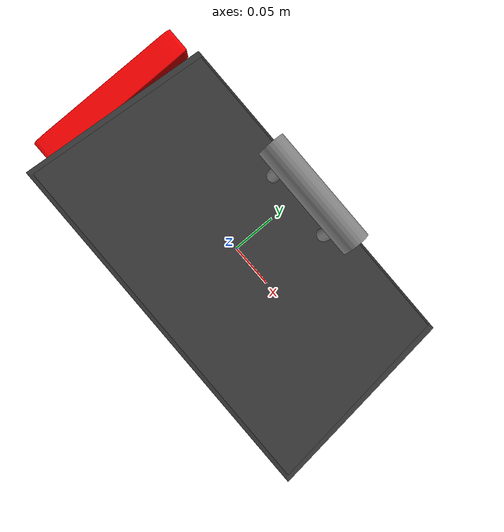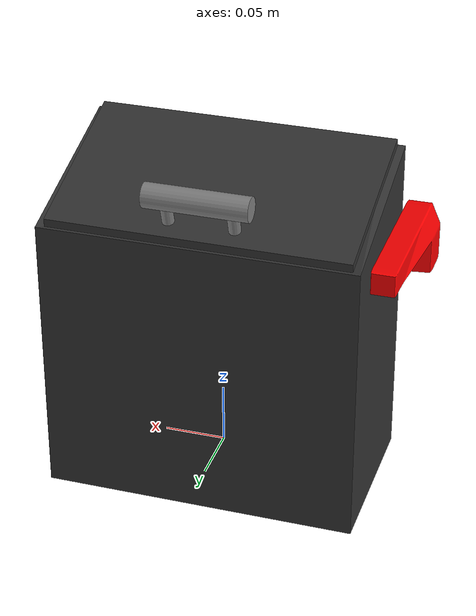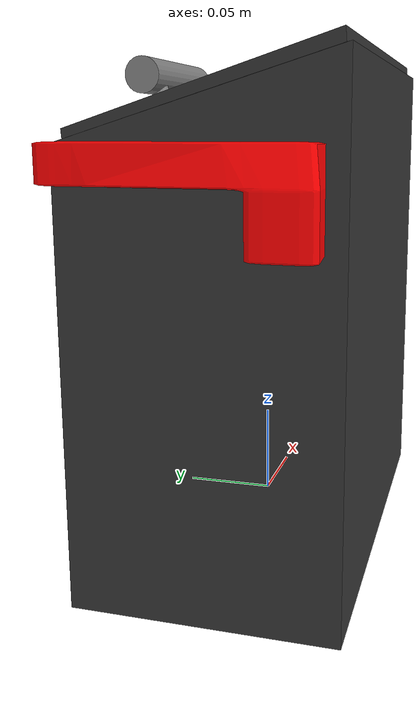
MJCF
<mujoco model="mailbox">
    <compiler angle="radian" autolimits="true" />
    <option impratio="10" />
    <default>
        <default class="visual">
            <geom contype="0" conaffinity="0" group="2" />
        </default>
        <default class="collision">
            <geom group="3" condim="1" friction="0" />
        </default>
        <default class="graspable_collision">
            <geom group="3" priority="2" condim="6" friction="0.99 0.99 0.99" />
        </default>
    </default>
    <asset>
        <mesh file="lid.obj" name="lid" />
        <mesh file="flag.obj" name="flag" scale="2 1 1" />
        <mesh file="main_box.obj" name="main_box" />
        <mesh file="handle.obj" name="handle" />
        <material name="red" specular="0.5" shininess="0.25" rgba="1 0 0 1" />
        <material name="black" specular="0.0" shininess="0.0" rgba="0.2 0.2 0.2 1" />
        <material name="grey" specular="0.0" shininess="0.0" rgba="0.5 0.5 0.5 1" />
    </asset>

    <worldbody>
        <body name="mailbox" euler="0 0 3.14">
            <geom type="mesh" mesh="main_box" material="black" class="visual" />
            <geom type="box" size="0.13 0.07 0.008"
                pos="0 0 -0.008"
                class="collision" />
            <geom type="box" size="0.13 0.008 0.13"
                pos="0 0.07 0.12"
                class="collision" />
            <geom type="box" size="0.13 0.008 0.108"
                pos="0 -0.07 0.108"
                class="collision" />

            <geom type="box" size="0.008 0.07 0.10"
                pos="0.12 0 0.10"
                class="collision" />
            <geom type="box" size="0.008 0.07 0.10"
                pos="-0.12 0 0.10"
                class="collision" />
            <geom type="box" size="0.008 0.07 0.03"
                pos="0.12 0.0 0.20" euler="0.3 0 0"
                class="collision" />
            <geom type="box" size="0.008 0.07 0.03"
                pos="-0.12 0.0 0.20" euler="0.3 0 0"
                class="collision" />

            <camera name="mailbox_inside_view" pos="0 0 0.2"
                euler="0 0 0" fovy="80" />

            <body name="mailbox_lid" pos="0.0 0.066561 0.255833">
                <joint name="mailbox_lid_hinge" armature="0.008" damping="5" range="0 2.0"
                    type='hinge'
                    axis="-1 0 0" springref="2.0" stiffness="0.003" />

                <geom type="mesh" mesh="lid" material="black" class="visual"
                    pos="0 -0.066561 -0.255833" mass="0.001" />
                <geom type="mesh" mesh="lid" class="collision"
                    pos="0 -0.066561 -0.255833" mass="0.001" />
                <body name="mailbox_lid_handle" pos="0 -0.066561 -0.255833">
                    <camera name="mailbox_lid_handle_view" pos="0 -0.1 0.23"
                        euler="1.9 0 0" fovy="120" />
                    <geom type="mesh" mesh="handle" material="grey" class="visual" mass="0.001" />
                    <geom type="cylinder" class="graspable_collision" size="0.01 0.042"
                        euler="0 1.570796326 0"
                        pos="0 -0.06 0.25" mass="0.001" />
                    <geom type="cylinder" class="visual" material="grey" size="0.01 0.042"
                        euler="0 1.570796326 0"
                        pos="0 -0.06 0.25" mass="0.0" />
                </body>
            </body>

            <body name="mailbox_flag" pos="0.14 -0.054504 0.205545">
                <camera name="mailbox_flag_view" pos="0.04 0.13 -0.01"
                    euler="1.5707963267 2.3 0" fovy="120" />
                <joint name="flag_hinge" damping="2" range="0.0 1.65"
                    type='hinge'
                    ref="0.0"
                    axis="1 0 0" springref="1.65" stiffness="0.01" />
                <geom type="mesh" mesh="flag" material="red" class="visual"
                    pos="-0.265 0.054504 -0.205545" mass="0" />
                <geom type="box" size="0.01 0.06 0.0075"
                    pos="0.005 0.05 0"
                    class="graspable_collision" mass="0" />
                <geom type="box" size="0.01 0.016 0.023"
                    pos="0.005 0.103 -0.015"
                    class="graspable_collision" />
            </body>
        </body>
    </worldbody>
    <contact>
        <exclude name="lid_body" body1="mailbox_lid" body2="mailbox" />
        <exclude name="flag_body" body1="mailbox_flag" body2="mailbox" />
        <exclude name="flag_lid" body1="mailbox_flag" body2="mailbox_lid" />
    </contact>
</mujoco>
